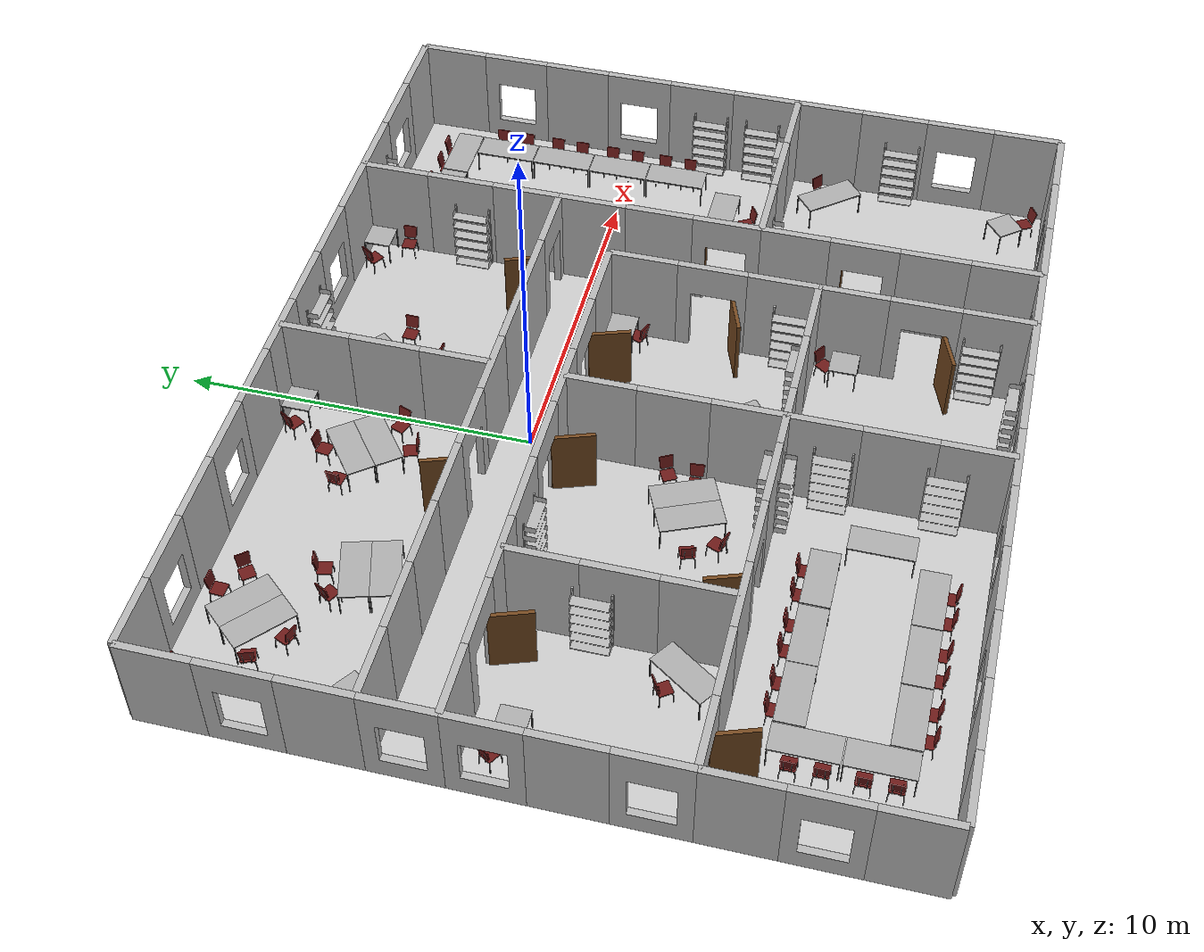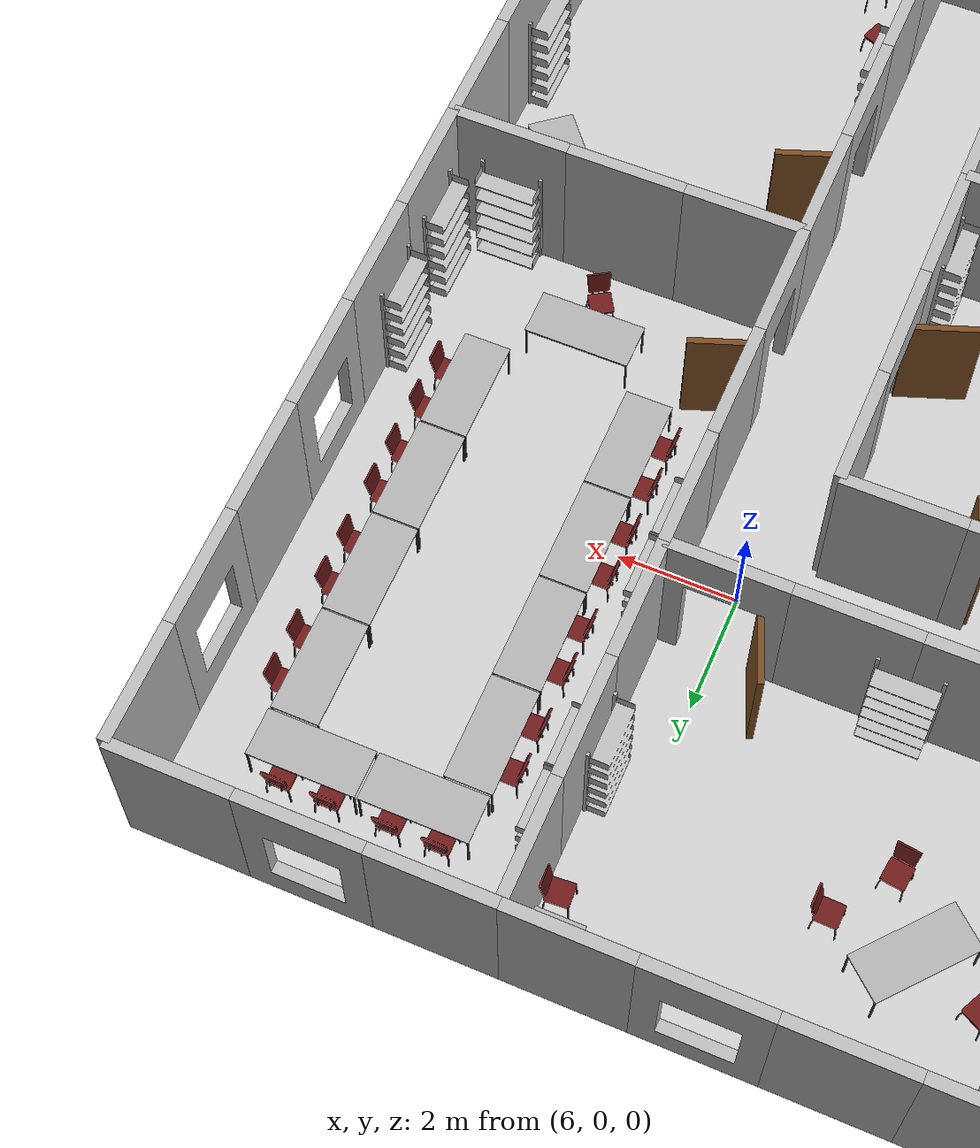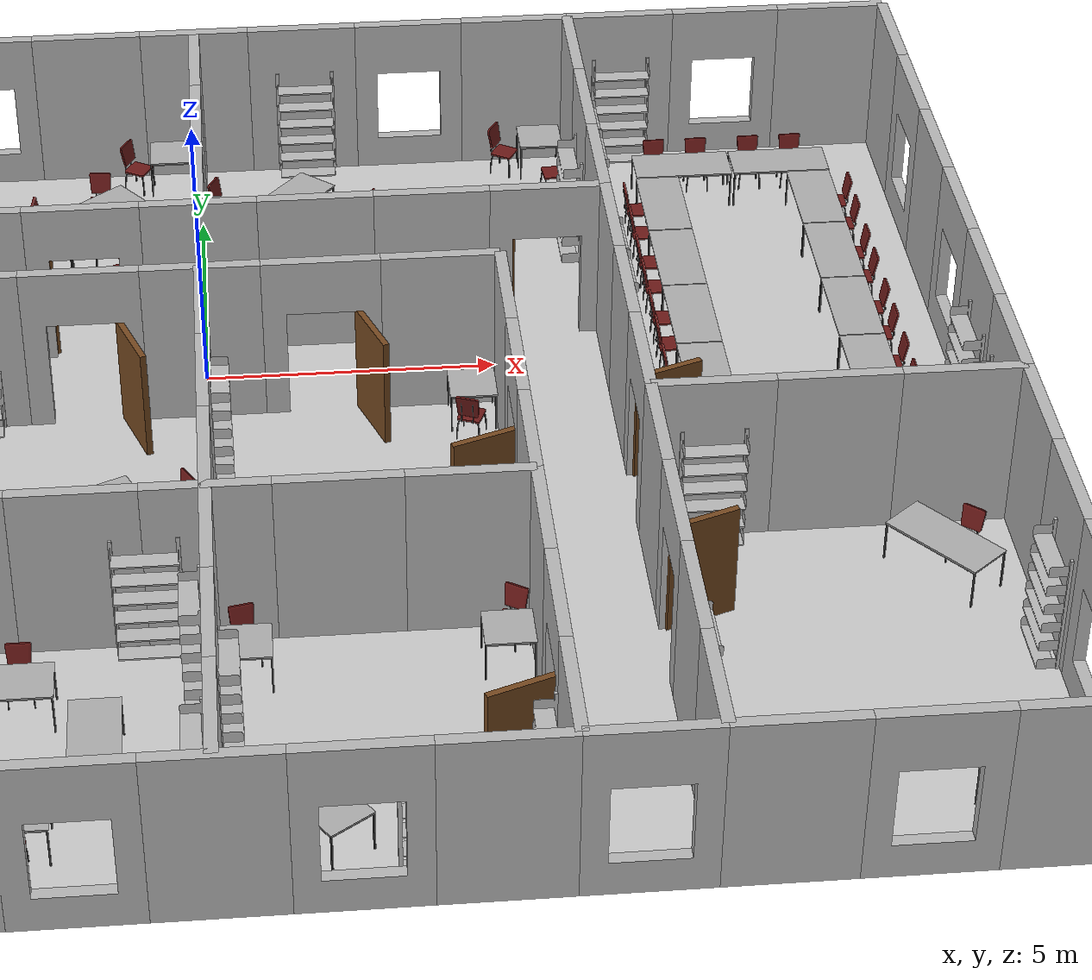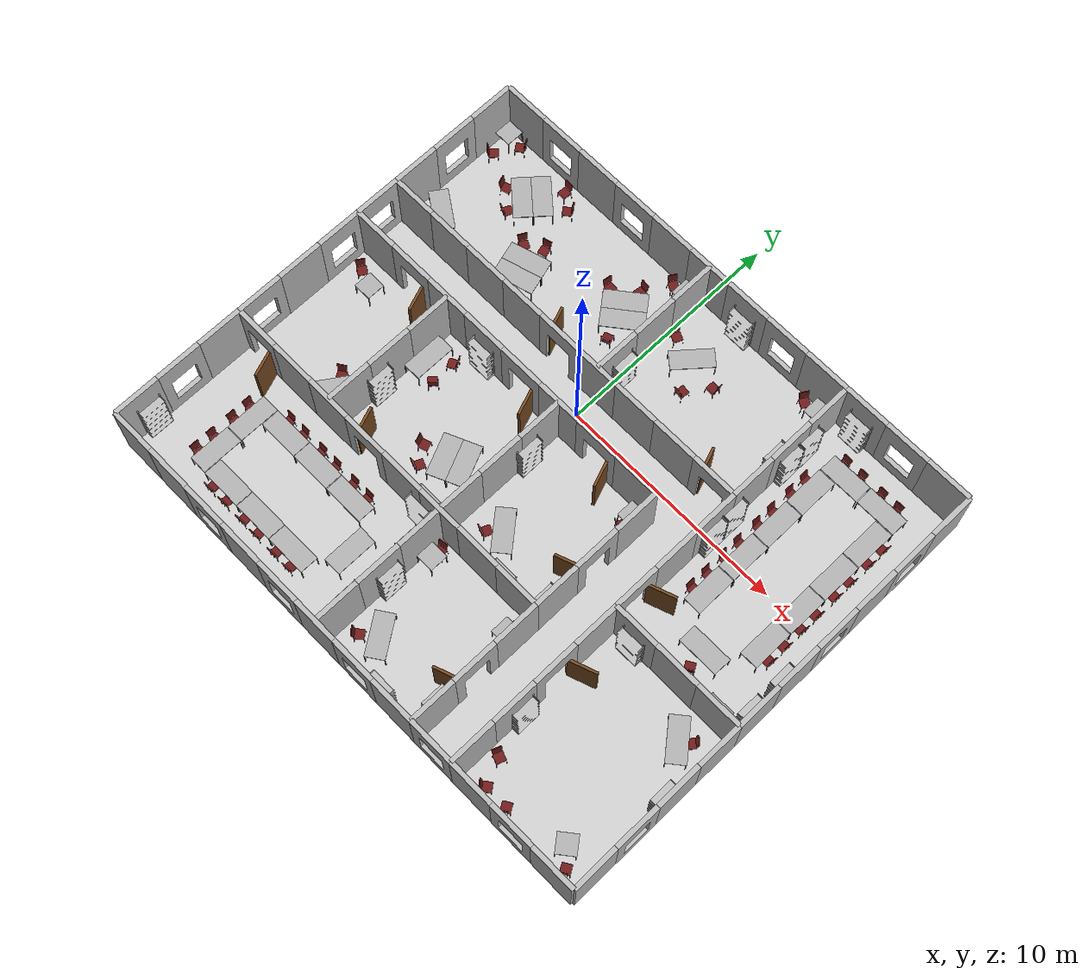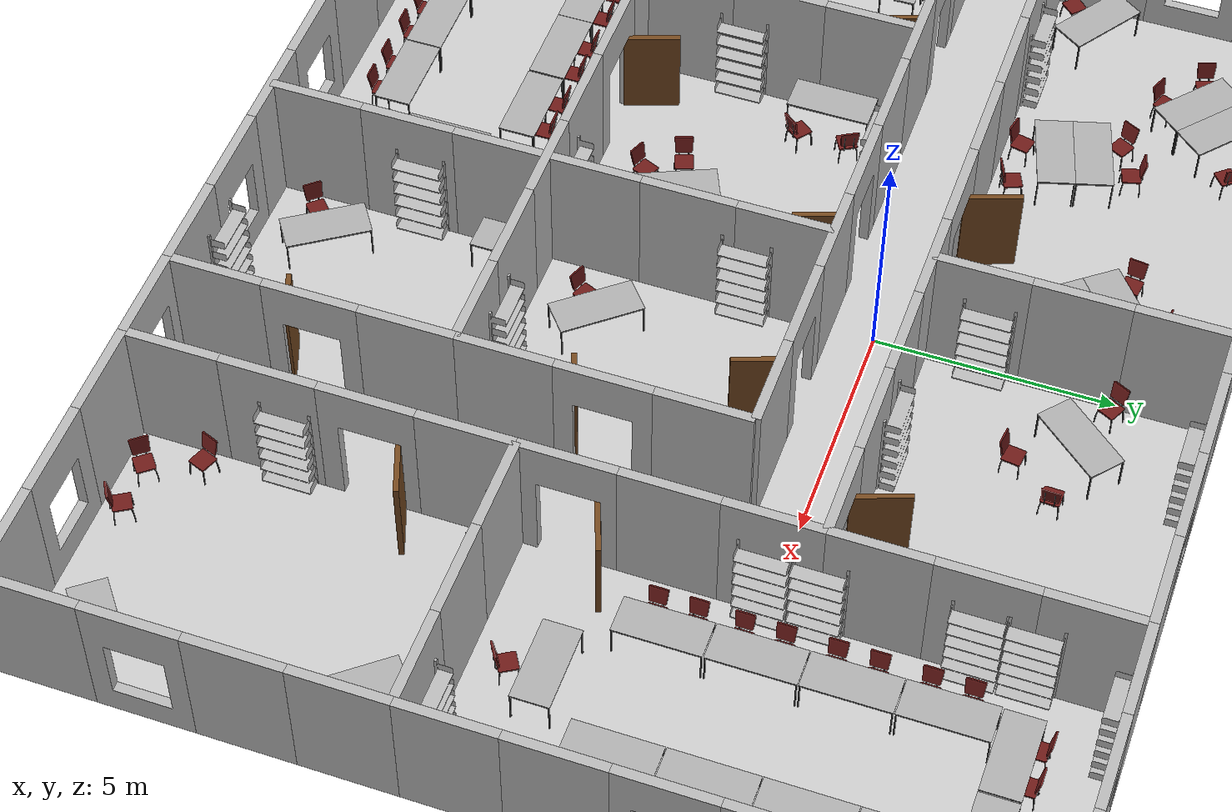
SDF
<?xml version="1.0" ?>
<sdf version="1.5">
  <world name="office_sim">
    <scene>
      <sky>
        <clouds>
          <speed>12</speed>
        </clouds>
      </sky>
    </scene>

    <include>
      <uri>model://sun</uri>
    </include>
    <model name='office_floor'>
      <pose>1 -3 0 0 0 0</pose>
      <static>1</static>
      <link name='link'>
        <collision name='collision'>
          <geometry>
            <plane>
              <normal>0 0 1</normal>
              <size>100 100</size>
            </plane>
          </geometry>
          <surface>
            <friction>
              <ode>
                <mu>100</mu>
                <mu2>50</mu2>
              </ode>
            </friction>
            <contact>
              <ode/>
            </contact>
            <bounce/>
          </surface>
          <max_contacts>10</max_contacts>
        </collision>
        <visual name='visual'>
          <cast_shadows>0</cast_shadows>
          <geometry>
            <plane>
              <normal>0 0 1</normal>
              <size>24 20</size>
            </plane>
          </geometry>
          <material>
	  <script>
            <uri>file://Media/materials/scripts/iai-office.material</uri>
             <name>IAI/OfficeCarpet</name>
          </script>
          </material>
        </visual>
        <self_collide>0</self_collide>
        <kinematic>0</kinematic>
        <gravity>1</gravity>
      </link>
    </model>
    <light name='fill_light_2' type='directional'>
      <pose>10 20 10 -1 -1 0</pose>
      <diffuse>0.2 0.18 0.18 1</diffuse>
      <specular>0.0980392 0.0980392 0.0980392 1</specular>
      <direction>0.1 0.1 -0.9</direction>
      <attenuation>
        <range>20</range>
        <constant>0.5</constant>
        <linear>0.01</linear>
        <quadratic>0.001</quadratic>
      </attenuation>
      <cast_shadows>1</cast_shadows>
    </light>
    <light name='fill_light_0' type='directional'>
      <pose>-10 -20 10 1 1 0</pose>
      <diffuse>0.25 0.2 0.2 1</diffuse>
      <specular>0.0980392 0.0980392 0.0980392 1</specular>
      <direction>0.1 0.1 -0.9</direction>
      <attenuation>
        <range>20</range>
        <constant>0.5</constant>
        <linear>0.01</linear>
        <quadratic>0.001</quadratic>
      </attenuation>
      <cast_shadows>1</cast_shadows>
    </light>
    <include>
      <name>Shelves.031</name>
      <uri>model://Shelves</uri>
      <pose>-3.9684362411499023 -1.1350655555725098 0.0 0.0 0.0 4.1326416067022365e-07</pose>
    </include>

    <include>
      <name>Shelves.030</name>
      <uri>model://Shelves</uri>
      <pose>-0.9684362411499023 -7.13506555557251 0.0 0.0 0.0 4.1326416067022365e-07</pose>
    </include>

    <include>
      <name>Shelves.029</name>
      <uri>model://Shelves</uri>
      <pose>8.031563758850098 -5.13506555557251 0.0 0.0 0.0 4.1326416067022365e-07</pose>
    </include>

    <include>
      <name>Shelves.028</name>
      <uri>model://Shelves</uri>
      <pose>8.031563758850098 6.86493444442749 0.0 0.0 0.0 4.1326416067022365e-07</pose>
    </include>

    <include>
      <name>Shelves.027</name>
      <uri>model://Shelves</uri>
      <pose>2.0315637588500977 6.86493444442749 0.0 0.0 0.0 4.1326416067022365e-07</pose>
    </include>

    <include>
      <name>Shelves.026</name>
      <uri>model://Shelves</uri>
      <pose>3.0315637588500977 1.1442127227783203 0.0 0.0 -0.0 3.1415929794311523</pose>
    </include>

    <include>
      <name>Shelves.025</name>
      <uri>model://Shelves</uri>
      <pose>-7.968436241149902 1.1442127227783203 0.0 0.0 -0.0 3.1415929794311523</pose>
    </include>

    <include>
      <name>Shelves.024</name>
      <uri>model://Shelves</uri>
      <pose>-0.9684362411499023 -6.85578727722168 0.0 0.0 -0.0 3.1415929794311523</pose>
    </include>

    <include>
      <name>Shelves.023</name>
      <uri>model://Shelves</uri>
      <pose>11.93159294128418 -4.842299938201904 0.0 0.0 -0.0 3.1415929794311523</pose>
    </include>

    <include>
      <name>Shelves.021</name>
      <uri>model://Shelves</uri>
      <pose>3.0315637588500977 -6.85578727722168 0.0 0.0 -0.0 3.1415929794311523</pose>
    </include>

    <include>
      <name>Shelves.020</name>
      <uri>model://Shelves</uri>
      <pose>3.0315637588500977 -12.85578727722168 0.0 0.0 -0.0 3.1415929794311523</pose>
    </include>

    <include>
      <name>Shelves.019</name>
      <uri>model://Shelves</uri>
      <pose>4.831563949584961 -11.677356719970703 0.0 0.0 -0.0 4.71238899230957</pose>
    </include>

    <include>
      <name>Shelves.018</name>
      <uri>model://Shelves</uri>
      <pose>-0.16843605041503906 -8.341840744018555 0.0 0.0 -0.0 4.71238899230957</pose>
    </include>

    <include>
      <name>Shelves.017</name>
      <uri>model://Shelves</uri>
      <pose>-0.16843605041503906 -11.341840744018555 0.0 0.0 -0.0 4.71238899230957</pose>
    </include>

    <include>
      <name>Shelves.016</name>
      <uri>model://Shelves</uri>
      <pose>-6.168436050415039 -3.3418407440185547 0.0 0.0 -0.0 4.71238899230957</pose>
    </include>

    <include>
      <name>Shelves.015</name>
      <uri>model://Shelves</uri>
      <pose>6.831563949584961 3.6581592559814453 0.0 0.0 -0.0 4.71238899230957</pose>
    </include>

    <include>
      <name>Shelves.014</name>
      <uri>model://Shelves</uri>
      <pose>4.831563949584961 -6.341840744018555 0.0 0.0 -0.0 4.71238899230957</pose>
    </include>

    <include>
      <name>Shelves.013</name>
      <uri>model://Shelves</uri>
      <pose>12.831563949584961 -8.341840744018555 0.0 0.0 -0.0 4.71238899230957</pose>
    </include>

    <include>
      <name>Shelves.012</name>
      <uri>model://Shelves</uri>
      <pose>12.831563949584961 -2.3418402671813965 0.0 0.0 -0.0 4.71238899230957</pose>
    </include>

    <include>
      <name>Shelves.011</name>
      <uri>model://Shelves</uri>
      <pose>12.831563949584961 -3.970358371734619 0.0 0.0 -0.0 4.71238899230957</pose>
    </include>

    <include>
      <name>Shelves.010</name>
      <uri>model://Shelves</uri>
      <pose>-5.8966450691223145 -4.741840362548828 0.0 0.0 -0.0 1.570796251296997</pose>
    </include>

    <include>
      <name>Shelves.009</name>
      <uri>model://Shelves</uri>
      <pose>7.1033549308776855 -9.70030403137207 0.0 0.0 -0.0 1.570796251296997</pose>
    </include>

    <include>
      <name>Shelves.008</name>
      <uri>model://Shelves</uri>
      <pose>-10.896644592285156 -11.741840362548828 0.0 0.0 -0.0 1.570796251296997</pose>
    </include>

    <include>
      <name>Shelves.007</name>
      <uri>model://Shelves</uri>
      <pose>0.10335493087768555 -9.741840362548828 0.0 0.0 -0.0 1.570796251296997</pose>
    </include>

    <include>
      <name>Shelves.006</name>
      <uri>model://Shelves</uri>
      <pose>0.10335493087768555 -2.741840362548828 0.0 0.0 -0.0 1.570796251296997</pose>
    </include>

    <include>
      <name>Shelves.005</name>
      <uri>model://Shelves</uri>
      <pose>0.10335493087768555 2.258159637451172 0.0 0.0 -0.0 1.570796251296997</pose>
    </include>

    <include>
      <name>Shelves.004</name>
      <uri>model://Shelves</uri>
      <pose>7.1033549308776855 5.028604507446289 0.0 0.0 -0.0 1.570796251296997</pose>
    </include>

    <include>
      <name>Shelves.003</name>
      <uri>model://Shelves</uri>
      <pose>7.1033549308776855 3.964681625366211 0.0 0.0 -0.0 1.570796251296997</pose>
    </include>

    <include>
      <name>Shelves.002</name>
      <uri>model://Shelves</uri>
      <pose>7.1033549308776855 0.9646815657615662 0.0 0.0 -0.0 1.570796251296997</pose>
    </include>

    <include>
      <name>Shelves.001</name>
      <uri>model://Shelves</uri>
      <pose>7.1033549308776855 -0.11143025010824203 0.0 0.0 -0.0 1.570796251296997</pose>
    </include>

    <include>
      <name>DoorOpen.011</name>
      <uri>model://DoorOpen</uri>
      <pose>-2.0 1.0 0.0 0.0 -0.0 -2.384185791015625e-07</pose>
    </include>

    <include>
      <name>DoorOpen.010</name>
      <uri>model://DoorOpen</uri>
      <pose>6.0 1.0 0.0 0.0 -0.0 -2.384185791015625e-07</pose>
    </include>

    <include>
      <name>DoorOpen.009</name>
      <uri>model://DoorOpen</uri>
      <pose>-2.0 -1.0 0.0 0.0 -0.0 3.141592502593994</pose>
    </include>

    <include>
      <name>DoorOpen.008</name>
      <uri>model://DoorOpen</uri>
      <pose>-10.0 -7.0 0.0 0.0 -0.0 3.141592502593994</pose>
    </include>

    <include>
      <name>DoorOpen.007</name>
      <uri>model://DoorOpen</uri>
      <pose>-8.0 -1.0 0.0 0.0 -0.0 3.141592502593994</pose>
    </include>

    <include>
      <name>DoorOpen.006</name>
      <uri>model://DoorOpen</uri>
      <pose>2.0 -1.0 0.0 0.0 -0.0 3.141592502593994</pose>
    </include>

    <include>
      <name>DoorOpen.005</name>
      <uri>model://DoorOpen</uri>
      <pose>5.0 -10.0 0.0 0.0 -0.0 1.570796251296997</pose>
    </include>

    <include>
      <name>DoorOpen.004</name>
      <uri>model://DoorOpen</uri>
      <pose>5.0 -4.0 0.0 0.0 -0.0 1.570796251296997</pose>
    </include>

    <include>
      <name>DoorOpen.003</name>
      <uri>model://DoorOpen</uri>
      <pose>7.0 -4.0 0.0 0.0 -0.0 -1.5707963705062866</pose>
    </include>

    <include>
      <name>DoorOpen.002</name>
      <uri>model://DoorOpen</uri>
      <pose>7.0 -8.0 0.0 0.0 -0.0 -1.5707963705062866</pose>
    </include>

    <include>
      <name>DoorOpen.001</name>
      <uri>model://DoorOpen</uri>
      <pose>-4.0 -7.0 0.0 0.0 -0.0 0.0</pose>
    </include>

    <include>
      <name>chair.077</name>
      <uri>model://Chair</uri>
      <pose>-1.1767916679382324 6.461211204528809 0.0 0.0 -0.0 1.0580670833587646</pose>
    </include>

    <include>
      <name>chair.076</name>
      <uri>model://Chair</uri>
      <pose>-9.856108665466309 6.461211204528809 0.0 0.0 -0.0 -0.9490617513656616</pose>
    </include>

    <include>
      <name>chair.075</name>
      <uri>model://Chair</uri>
      <pose>-10.422019958496094 5.518025875091553 0.0 0.0 -0.0 2.39536190032959</pose>
    </include>

    <include>
      <name>chair.074</name>
      <uri>model://Chair</uri>
      <pose>-10.422019958496094 1.5180258750915527 0.0 0.0 -0.0 2.39536190032959</pose>
    </include>

    <include>
      <name>chair.073</name>
      <uri>model://Chair</uri>
      <pose>-8.894061088562012 4.800981521606445 0.0 0.0 -0.0 1.919332504272461</pose>
    </include>

    <include>
      <name>chair.072</name>
      <uri>model://Chair</uri>
      <pose>-8.120648384094238 4.103024482727051 0.0 0.0 -0.0 2.7526354789733887</pose>
    </include>

    <include>
      <name>chair.071</name>
      <uri>model://Chair</uri>
      <pose>-7.112948894500732 6.28751277923584 0.0 0.0 -0.0 -0.03989126533269882</pose>
    </include>

    <include>
      <name>chair.070</name>
      <uri>model://Chair</uri>
      <pose>-6.4488067626953125 5.786490440368652 0.0 0.0 -0.0 -0.8731942176818848</pose>
    </include>

    <include>
      <name>chair.069</name>
      <uri>model://Chair</uri>
      <pose>-4.859220027923584 1.5611318349838257 0.0 0.0 -0.0 -2.730329990386963</pose>
    </include>

    <include>
      <name>chair.068</name>
      <uri>model://Chair</uri>
      <pose>-5.957728862762451 1.5050313472747803 0.0 0.0 -0.0 2.923724412918091</pose>
    </include>

    <include>
      <name>chair.067</name>
      <uri>model://Chair</uri>
      <pose>-5.816341876983643 3.8929905891418457 0.0 0.0 -0.0 0.2612699568271637</pose>
    </include>

    <include>
      <name>chair.066</name>
      <uri>model://Chair</uri>
      <pose>-6.551100730895996 3.502814769744873 0.0 0.0 -0.0 1.094572901725769</pose>
    </include>

    <include>
      <name>chair.065</name>
      <uri>model://Chair</uri>
      <pose>-2.828597068786621 4.6129560470581055 0.0 0.0 -0.0 1.443638563156128</pose>
    </include>

    <include>
      <name>chair.064</name>
      <uri>model://Chair</uri>
      <pose>-1.8943233489990234 5.306358337402344 0.0 0.0 -0.0 -0.1208677738904953</pose>
    </include>

    <include>
      <name>chair.063</name>
      <uri>model://Chair</uri>
      <pose>-1.3927404880523682 3.009568214416504 0.0 0.0 -0.0 -2.793056011199951</pose>
    </include>

    <include>
      <name>chair.062</name>
      <uri>model://Chair</uri>
      <pose>-0.5971378087997437 3.550607442855835 0.0 0.0 -0.0 -1.9489178657531738</pose>
    </include>

    <include>
      <name>chair.061</name>
      <uri>model://Chair</uri>
      <pose>5.789566993713379 6.49669075012207 0.0 0.0 -0.0 1.0295674800872803</pose>
    </include>

    <include>
      <name>chair.060</name>
      <uri>model://Chair</uri>
      <pose>6.638433933258057 5.663543701171875 0.0 0.0 -0.0 -1.4921659231185913</pose>
    </include>

    <include>
      <name>chair.059</name>
      <uri>model://Chair</uri>
      <pose>2.205463409423828 3.462778091430664 0.0 0.0 -0.0 3.0117697715759277</pose>
    </include>

    <include>
      <name>chair.058</name>
      <uri>model://Chair</uri>
      <pose>2.9259519577026367 4.412513256072998 0.0 0.0 -0.0 -1.5958665609359741</pose>
    </include>

    <include>
      <name>chair.057</name>
      <uri>model://Chair</uri>
      <pose>0.44790756702423096 4.969254493713379 0.0 0.0 -0.0 1.109393835067749</pose>
    </include>

    <include>
      <name>chair.056</name>
      <uri>model://Chair</uri>
      <pose>-10.168054580688477 -1.8467810153961182 0.0 0.0 -0.0 1.0344487428665161</pose>
    </include>

    <include>
      <name>chair.055</name>
      <uri>model://Chair</uri>
      <pose>-7.35992431640625 -5.457332611083984 0.0 0.0 -0.0 0.5981165766716003</pose>
    </include>

    <include>
      <name>chair.054</name>
      <uri>model://Chair</uri>
      <pose>-4.7586989402771 -3.0871129035949707 0.0 0.0 -0.0 -2.2289175987243652</pose>
    </include>

    <include>
      <name>chair.053</name>
      <uri>model://Chair</uri>
      <pose>-4.7586989402771 -2.030745506286621 0.0 0.0 -0.0 -1.072267770767212</pose>
    </include>

    <include>
      <name>chair.051</name>
      <uri>model://Chair</uri>
      <pose>-0.552092432975769 -4.030745506286621 0.0 0.0 -0.0 -1.072267770767212</pose>
    </include>

    <include>
      <name>chair.050</name>
      <uri>model://Chair</uri>
      <pose>-0.6727085113525391 -4.822094917297363 0.0 0.0 -0.0 -1.48405921459198</pose>
    </include>

    <include>
      <name>chair.049</name>
      <uri>model://Chair</uri>
      <pose>-3.045818328857422 -5.096081733703613 0.0 0.0 -0.0 1.919332504272461</pose>
    </include>

    <include>
      <name>chair.048</name>
      <uri>model://Chair</uri>
      <pose>1.0853331089019775 -5.794038772583008 0.0 0.0 -0.0 2.7526354789733887</pose>
    </include>

    <include>
      <name>chair.047</name>
      <uri>model://Chair</uri>
      <pose>7.5999627113342285 -11.34547233581543 0.0 0.0 -0.0 1.206688642501831</pose>
    </include>

    <include>
      <name>chair.046</name>
      <uri>model://Chair</uri>
      <pose>8.052691459655762 -12.386749267578125 0.0 0.0 0.0 2.24947190284729</pose>
    </include>

    <include>
      <name>chair.045</name>
      <uri>model://Chair</uri>
      <pose>9.052691459655762 -12.386749267578125 0.0 0.0 0.0 -2.594113349914551</pose>
    </include>

    <include>
      <name>chair.044</name>
      <uri>model://Chair</uri>
      <pose>4.434733867645264 -2.0032715797424316 0.0 0.0 -0.0 2.7526354789733887</pose>
    </include>

    <include>
      <name>chair.043</name>
      <uri>model://Chair</uri>
      <pose>-2.5930893421173096 -5.794038772583008 0.0 0.0 -0.0 2.7526354789733887</pose>
    </include>

    <include>
      <name>chair.042</name>
      <uri>model://Chair</uri>
      <pose>4.560027599334717 -7.4520039558410645 0.0 0.0 -0.0 -0.563490092754364</pose>
    </include>

    <include>
      <name>chair.041</name>
      <uri>model://Chair</uri>
      <pose>0.4854675233364105 -7.587822914123535 0.0 0.0 -0.0 0.2043076455593109</pose>
    </include>

    <include>
      <name>chair.040</name>
      <uri>model://Chair</uri>
      <pose>0.7571048736572266 -11.866110801696777 0.0 0.0 0.0 2.2928085327148438</pose>
    </include>

    <include>
      <name>chair.039</name>
      <uri>model://Chair</uri>
      <pose>12.052691459655762 -12.386749267578125 0.0 0.0 0.0 -2.594113349914551</pose>
    </include>

    <include>
      <name>chair.038</name>
      <uri>model://Chair</uri>
      <pose>11.992774963378906 -6.101810455322266 0.0 0.0 0.0 -0.6981316208839417</pose>
    </include>

    <include>
      <name>chair.037</name>
      <uri>model://Chair</uri>
      <pose>9.992774963378906 -4.101810455322266 0.0 0.0 0.0 -2.594113349914551</pose>
    </include>

    <include>
      <name>chair.036</name>
      <uri>model://Chair</uri>
      <pose>8.061246871948242 -1.1018102169036865 0.0 0.0 0.0 1.5707963705062866</pose>
    </include>

    <include>
      <name>chair.035</name>
      <uri>model://Chair</uri>
      <pose>8.061246871948242 -1.9018104076385498 0.0 0.0 0.0 1.5707963705062866</pose>
    </include>

    <include>
      <name>chair.034</name>
      <uri>model://Chair</uri>
      <pose>11.761246681213379 -1.1018099784851074 0.0 0.0 -0.0 -1.570796251296997</pose>
    </include>

    <include>
      <name>chair.033</name>
      <uri>model://Chair</uri>
      <pose>11.761246681213379 -1.9018101692199707 0.0 0.0 -0.0 -1.570796251296997</pose>
    </include>

    <include>
      <name>chair.032</name>
      <uri>model://Chair</uri>
      <pose>11.761246681213379 -0.20181012153625488 0.0 0.0 -0.0 -1.570796251296997</pose>
    </include>

    <include>
      <name>chair.031</name>
      <uri>model://Chair</uri>
      <pose>11.761246681213379 0.5981900691986084 0.0 0.0 -0.0 -1.570796251296997</pose>
    </include>

    <include>
      <name>chair.030</name>
      <uri>model://Chair</uri>
      <pose>11.761246681213379 2.3981902599334717 0.0 0.0 -0.0 -1.570796251296997</pose>
    </include>

    <include>
      <name>chair.029</name>
      <uri>model://Chair</uri>
      <pose>11.761246681213379 1.5981900691986084 0.0 0.0 -0.0 -1.570796251296997</pose>
    </include>

    <include>
      <name>chair.028</name>
      <uri>model://Chair</uri>
      <pose>11.761246681213379 3.3981902599334717 0.0 0.0 -0.0 -1.570796251296997</pose>
    </include>

    <include>
      <name>chair.027</name>
      <uri>model://Chair</uri>
      <pose>11.761246681213379 4.198190689086914 0.0 0.0 -0.0 -1.570796251296997</pose>
    </include>

    <include>
      <name>chair.026</name>
      <uri>model://Chair</uri>
      <pose>8.061246871948242 -0.20181035995483398 0.0 0.0 0.0 1.5707963705062866</pose>
    </include>

    <include>
      <name>chair.025</name>
      <uri>model://Chair</uri>
      <pose>8.061246871948242 0.5981898307800293 0.0 0.0 0.0 1.5707963705062866</pose>
    </include>

    <include>
      <name>chair.024</name>
      <uri>model://Chair</uri>
      <pose>8.061246871948242 2.3981902599334717 0.0 0.0 0.0 1.5707963705062866</pose>
    </include>

    <include>
      <name>chair.023</name>
      <uri>model://Chair</uri>
      <pose>8.061246871948242 1.5981900691986084 0.0 0.0 0.0 1.5707963705062866</pose>
    </include>

    <include>
      <name>chair.022</name>
      <uri>model://Chair</uri>
      <pose>8.061246871948242 3.3981902599334717 0.0 0.0 0.0 1.5707963705062866</pose>
    </include>

    <include>
      <name>chair.021</name>
      <uri>model://Chair</uri>
      <pose>8.061246871948242 4.198190689086914 0.0 0.0 0.0 1.5707963705062866</pose>
    </include>

    <include>
      <name>chair.020</name>
      <uri>model://Chair</uri>
      <pose>11.161247253417969 5.5981903076171875 0.0 0.0 -0.0 -1.7484555314695172e-07</pose>
    </include>

    <include>
      <name>chair.019</name>
      <uri>model://Chair</uri>
      <pose>10.361247062683105 5.5981903076171875 0.0 0.0 -0.0 -1.7484555314695172e-07</pose>
    </include>

    <include>
      <name>chair.018</name>
      <uri>model://Chair</uri>
      <pose>8.561246871948242 5.5981903076171875 0.0 0.0 -0.0 -1.7484555314695172e-07</pose>
    </include>

    <include>
      <name>chair.017</name>
      <uri>model://Chair</uri>
      <pose>9.361247062683105 5.5981903076171875 0.0 0.0 -0.0 -1.7484555314695172e-07</pose>
    </include>

    <include>
      <name>chair.016</name>
      <uri>model://Chair</uri>
      <pose>-8.724837303161621 -10.608839988708496 0.0 0.0 0.0 1.5707963705062866</pose>
    </include>

    <include>
      <name>chair.015</name>
      <uri>model://Chair</uri>
      <pose>-8.724837303161621 -11.40884017944336 0.0 0.0 0.0 1.5707963705062866</pose>
    </include>

    <include>
      <name>chair.014</name>
      <uri>model://Chair</uri>
      <pose>-8.724837303161621 -9.608839988708496 0.0 0.0 0.0 1.5707963705062866</pose>
    </include>

    <include>
      <name>chair.013</name>
      <uri>model://Chair</uri>
      <pose>-8.724837303161621 -8.808839797973633 0.0 0.0 0.0 1.5707963705062866</pose>
    </include>

    <include>
      <name>chair.012</name>
      <uri>model://Chair</uri>
      <pose>-7.324837684631348 -11.90884017944336 0.0 0.0 -0.0 -3.141592502593994</pose>
    </include>

    <include>
      <name>chair.011</name>
      <uri>model://Chair</uri>
      <pose>-6.524837493896484 -11.90884017944336 0.0 0.0 -0.0 -3.141592502593994</pose>
    </include>

    <include>
      <name>chair.010</name>
      <uri>model://Chair</uri>
      <pose>-4.724837303161621 -11.90884017944336 0.0 0.0 -0.0 -3.141592502593994</pose>
    </include>

    <include>
      <name>chair.009</name>
      <uri>model://Chair</uri>
      <pose>-5.524837493896484 -11.90884017944336 0.0 0.0 -0.0 -3.141592502593994</pose>
    </include>

    <include>
      <name>chair.008</name>
      <uri>model://Chair</uri>
      <pose>-3.724837303161621 -11.90884017944336 0.0 0.0 -0.0 -3.141592502593994</pose>
    </include>

    <include>
      <name>chair.007</name>
      <uri>model://Chair</uri>
      <pose>-2.924837112426758 -11.90884017944336 0.0 0.0 -0.0 -3.141592502593994</pose>
    </include>

    <include>
      <name>chair.006</name>
      <uri>model://Chair</uri>
      <pose>-7.324837684631348 -8.208840370178223 0.0 0.0 -0.0 0.0</pose>
    </include>

    <include>
      <name>chair.005</name>
      <uri>model://Chair</uri>
      <pose>-6.524837493896484 -8.208840370178223 0.0 0.0 -0.0 0.0</pose>
    </include>

    <include>
      <name>chair.004</name>
      <uri>model://Chair</uri>
      <pose>-4.724837303161621 -8.208840370178223 0.0 0.0 -0.0 0.0</pose>
    </include>

    <include>
      <name>chair.003</name>
      <uri>model://Chair</uri>
      <pose>-5.524837493896484 -8.208840370178223 0.0 0.0 -0.0 0.0</pose>
    </include>

    <include>
      <name>chair.002</name>
      <uri>model://Chair</uri>
      <pose>-3.724837303161621 -8.208840370178223 0.0 0.0 -0.0 0.0</pose>
    </include>

    <include>
      <name>chair.001</name>
      <uri>model://Chair</uri>
      <pose>-2.924837350845337 -8.208840370178223 0.0 0.0 -0.0 0.0</pose>
    </include>

    <include>
      <name>SmallTable.009</name>
      <uri>model://SmallTable</uri>
      <pose>11.49277114868164 -11.799837112426758 0.0 0.0 -0.0 0.6710938811302185</pose>
    </include>

    <include>
      <name>SmallTable.008</name>
      <uri>model://SmallTable</uri>
      <pose>0.49277162551879883 -7.997496604919434 0.0 0.0 -0.0 0.0</pose>
    </include>

    <include>
      <name>SmallTable.007</name>
      <uri>model://SmallTable</uri>
      <pose>4.492771625518799 -7.997496604919434 0.0 0.0 -0.0 0.0</pose>
    </include>

    <include>
      <name>SmallTable.005</name>
      <uri>model://SmallTable</uri>
      <pose>-9.351788520812988 -2.1724982261657715 0.0 0.0 -0.0 0.0</pose>
    </include>

    <include>
      <name>SmallTable.004</name>
      <uri>model://SmallTable</uri>
      <pose>-10.550202369689941 6.496032238006592 0.0 0.0 -0.0 0.0</pose>
    </include>

    <include>
      <name>SmallTable.003</name>
      <uri>model://SmallTable</uri>
      <pose>-0.5502023696899414 6.496032238006592 0.0 0.0 -0.0 0.0</pose>
    </include>

    <include>
      <name>BigTable.035</name>
      <uri>model://BigTable</uri>
      <pose>9.970643997192383 -3.337587833404541 0.0 0.0 -0.0 -3.141592502593994</pose>
    </include>

    <include>
      <name>BigTable.034</name>
      <uri>model://BigTable</uri>
      <pose>-1.7653074264526367 -10.015997886657715 0.0 0.0 0.0 -1.570796251296997</pose>
    </include>

    <include>
      <name>SmallTable.002</name>
      <uri>model://SmallTable</uri>
      <pose>6.449797630310059 6.496032238006592 0.0 0.0 -0.0 0.0</pose>
    </include>

    <include>
      <name>SmallTable.001</name>
      <uri>model://SmallTable</uri>
      <pose>4.484805583953857 -1.5257582664489746 0.0 0.0 -0.0 0.0</pose>
    </include>

    <include>
      <name>BigTable.033</name>
      <uri>model://BigTable</uri>
      <pose>1.3909807205200195 -11.392568588256836 0.0 0.0 -0.0 -0.9696148037910461</pose>
    </include>

    <include>
      <name>BigTable.032</name>
      <uri>model://BigTable</uri>
      <pose>11.59203815460205 -6.392568588256836 0.0 0.0 0.0 2.259244441986084</pose>
    </include>

    <include>
      <name>BigTable.031</name>
      <uri>model://BigTable</uri>
      <pose>1.5920383930206299 4.607431411743164 0.0 0.0 -0.0 -2.278611898422241</pose>
    </include>

    <include>
      <name>BigTable.030</name>
      <uri>model://BigTable</uri>
      <pose>-5.888200283050537 3.0161097049713135 0.0 0.0 -0.0 0.28127923607826233</pose>
    </include>

    <include>
      <name>BigTable.029</name>
      <uri>model://BigTable</uri>
      <pose>-5.666131496429443 2.247548818588257 0.0 0.0 -0.0 0.28127923607826233</pose>
    </include>

    <include>
      <name>BigTable.028</name>
      <uri>model://BigTable</uri>
      <pose>-8.040440559387207 4.811714172363281 0.0 0.0 0.0 -0.7120052576065063</pose>
    </include>

    <include>
      <name>BigTable.027</name>
      <uri>model://BigTable</uri>
      <pose>-7.517758369445801 5.417357444763184 0.0 0.0 0.0 -0.7120052576065063</pose>
    </include>

    <include>
      <name>BigTable.026</name>
      <uri>model://BigTable</uri>
      <pose>-1.4606881141662598 3.8930177688598633 0.0 0.0 -0.0 -2.475163459777832</pose>
    </include>

    <include>
      <name>BigTable.025</name>
      <uri>model://BigTable</uri>
      <pose>-1.9552350044250488 4.521844863891602 0.0 0.0 -0.0 -2.475163459777832</pose>
    </include>

    <include>
      <name>BigTable.024</name>
      <uri>model://BigTable</uri>
      <pose>-9.847131729125977 2.143615245819092 0.0 0.0 -0.0 -0.5935592651367188</pose>
    </include>

    <include>
      <name>BigTable.023</name>
      <uri>model://BigTable</uri>
      <pose>-6.975014686584473 -5.92275333404541 0.0 0.0 -0.0 0.9772372841835022</pose>
    </include>

    <include>
      <name>BigTable.022</name>
      <uri>model://BigTable</uri>
      <pose>-5.118752956390381 -8.626441955566406 0.0 0.0 -0.0 0.0</pose>
    </include>

    <include>
      <name>BigTable.021</name>
      <uri>model://BigTable</uri>
      <pose>-3.282266616821289 -8.626441955566406 0.0 0.0 -0.0 0.0</pose>
    </include>

    <include>
      <name>BigTable.020</name>
      <uri>model://BigTable</uri>
      <pose>-6.928031921386719 -8.626441955566406 0.0 0.0 -0.0 0.0</pose>
    </include>

    <include>
      <name>BigTable.019</name>
      <uri>model://BigTable</uri>
      <pose>-5.103433609008789 -11.471855163574219 0.0 0.0 -0.0 0.0</pose>
    </include>

    <include>
      <name>BigTable.018</name>
      <uri>model://BigTable</uri>
      <pose>-6.928031921386719 -11.471855163574219 0.0 0.0 -0.0 0.0</pose>
    </include>

    <include>
      <name>BigTable.017</name>
      <uri>model://BigTable</uri>
      <pose>-3.282266616821289 -11.471855163574219 0.0 0.0 -0.0 0.0</pose>
    </include>

    <include>
      <name>BigTable.016</name>
      <uri>model://BigTable</uri>
      <pose>-8.26133918762207 -10.950126647949219 0.0 0.0 0.0 -1.570796251296997</pose>
    </include>

    <include>
      <name>BigTable.015</name>
      <uri>model://BigTable</uri>
      <pose>-8.26133918762207 -9.114413261413574 0.0 0.0 0.0 -1.570796251296997</pose>
    </include>

    <include>
      <name>BigTable.014</name>
      <uri>model://BigTable</uri>
      <pose>10.849480628967285 5.211101531982422 0.0 0.0 -0.0 -3.141592502593994</pose>
    </include>

    <include>
      <name>BigTable.013</name>
      <uri>model://BigTable</uri>
      <pose>9.01376724243164 5.211101531982422 0.0 0.0 -0.0 -3.141592502593994</pose>
    </include>

    <include>
      <name>BigTable.012</name>
      <uri>model://BigTable</uri>
      <pose>8.49203872680664 -1.5925686359405518 0.0 0.0 -0.0 -1.570796251296997</pose>
    </include>

    <include>
      <name>BigTable.011</name>
      <uri>model://BigTable</uri>
      <pose>8.49203872680664 0.2320290505886078 0.0 0.0 -0.0 -1.570796251296997</pose>
    </include>

    <include>
      <name>BigTable.010</name>
      <uri>model://BigTable</uri>
      <pose>8.49203872680664 3.877794027328491 0.0 0.0 -0.0 -1.570796251296997</pose>
    </include>

    <include>
      <name>BigTable.009</name>
      <uri>model://BigTable</uri>
      <pose>8.49203872680664 2.053196430206299 0.0 0.0 -0.0 -1.570796251296997</pose>
    </include>

    <include>
      <name>BigTable.008</name>
      <uri>model://BigTable</uri>
      <pose>11.337451934814453 2.053196430206299 0.0 0.0 -0.0 -1.570796251296997</pose>
    </include>

    <include>
      <name>BigTable.007</name>
      <uri>model://BigTable</uri>
      <pose>11.337451934814453 3.877794027328491 0.0 0.0 -0.0 -1.570796251296997</pose>
    </include>

    <include>
      <name>BigTable.006</name>
      <uri>model://BigTable</uri>
      <pose>11.337451934814453 0.2320290505886078 0.0 0.0 -0.0 -1.570796251296997</pose>
    </include>

    <include>
      <name>BigTable.005</name>
      <uri>model://BigTable</uri>
      <pose>11.337451934814453 -1.5925686359405518 0.0 0.0 -0.0 -1.570796251296997</pose>
    </include>

    <include>
      <name>BigTable.004</name>
      <uri>model://BigTable</uri>
      <pose>-5.507961273193359 -2.5925686359405518 0.0 0.0 -0.0 -1.570796251296997</pose>
    </include>

    <include>
      <name>BigTable.003</name>
      <uri>model://BigTable</uri>
      <pose>-2.0734405517578125 -4.955126762390137 0.0 0.0 -0.0 -1.1522915363311768</pose>
    </include>

    <include>
      <name>BigTable.002</name>
      <uri>model://BigTable</uri>
      <pose>-1.3424824476242065 -4.630010604858398 0.0 0.0 -0.0 -1.1522915363311768</pose>
    </include>

    <include>
      <name>BigTable.001</name>
      <uri>model://BigTable</uri>
      <pose>1.5920383930206299 -5.392568588256836 0.0 0.0 -0.0 -0.8726645708084106</pose>
    </include>

    <include>
      <name>WindowTile.019</name>
      <uri>model://WindowTile</uri>
      <pose>-6.0 -13.0 0.0 0.0 -0.0 0.0</pose>
    </include>

    <include>
      <name>WindowTile.018</name>
      <uri>model://WindowTile</uri>
      <pose>-2.0 -13.0 0.0 0.0 -0.0 0.0</pose>
    </include>

    <include>
      <name>WindowTile.017</name>
      <uri>model://WindowTile</uri>
      <pose>2.0 -13.0 0.0 0.0 -0.0 0.0</pose>
    </include>

    <include>
      <name>WindowTile.016</name>
      <uri>model://WindowTile</uri>
      <pose>6.0 -13.0 0.0 0.0 -0.0 0.0</pose>
    </include>

    <include>
      <name>WindowTile.015</name>
      <uri>model://WindowTile</uri>
      <pose>-11.0 -10.0 0.0 0.0 -0.0 -1.570796251296997</pose>
    </include>

    <include>
      <name>WindowTile.014</name>
      <uri>model://WindowTile</uri>
      <pose>-11.0 -6.0 0.0 0.0 -0.0 -1.570796251296997</pose>
    </include>

    <include>
      <name>WindowTile.013</name>
      <uri>model://WindowTile</uri>
      <pose>-11.0 -2.0 0.0 0.0 -0.0 -1.570796251296997</pose>
    </include>

    <include>
      <name>WindowTile.012</name>
      <uri>model://WindowTile</uri>
      <pose>-11.0 0.0 0.0 0.0 -0.0 -1.570796251296997</pose>
    </include>

    <include>
      <name>WindowTile.003</name>
      <uri>model://WindowTile</uri>
      <pose>-11.0 4.0 0.0 0.0 -0.0 -1.570796251296997</pose>
    </include>

    <include>
      <name>WallTile.084</name>
      <uri>model://WallTile</uri>
      <pose>2.0 1.0 0.0 0.0 -0.0 3.141592502593994</pose>
    </include>

    <include>
      <name>DoorTile.011</name>
      <uri>model://DoorTile</uri>
      <pose>5.0 -4.0 0.0 0.0 -0.0 -1.570796251296997</pose>
    </include>

    <include>
      <name>DoorTile.010</name>
      <uri>model://DoorTile</uri>
      <pose>5.0 -10.0 0.0 0.0 -0.0 -1.570796251296997</pose>
    </include>

    <include>
      <name>WallTile.082</name>
      <uri>model://WallTile</uri>
      <pose>4.0 -7.0 0.0 0.0 -0.0 0.0</pose>
    </include>

    <include>
      <name>WallTile.081</name>
      <uri>model://WallTile</uri>
      <pose>2.0 -7.0 0.0 0.0 -0.0 3.141592502593994</pose>
    </include>

    <include>
      <name>WallTile.080</name>
      <uri>model://WallTile</uri>
      <pose>5.0 -6.0 0.0 0.0 -0.0 1.570796251296997</pose>
    </include>

    <include>
      <name>WallTile.078</name>
      <uri>model://WallTile</uri>
      <pose>5.0 -2.0 0.0 0.0 -0.0 1.570796251296997</pose>
    </include>

    <include>
      <name>WallTile.077</name>
      <uri>model://WallTile</uri>
      <pose>5.0 -8.0 0.0 0.0 -0.0 1.570796251296997</pose>
    </include>

    <include>
      <name>WallTile.075</name>
      <uri>model://WallTile</uri>
      <pose>5.0 -12.0 0.0 0.0 -0.0 1.570796251296997</pose>
    </include>

    <include>
      <name>WallTile.074</name>
      <uri>model://WallTile</uri>
      <pose>0.0 -12.0 0.0 0.0 -0.0 1.570796251296997</pose>
    </include>

    <include>
      <name>WallTile.073</name>
      <uri>model://WallTile</uri>
      <pose>0.0 -10.0 0.0 0.0 -0.0 1.570796251296997</pose>
    </include>

    <include>
      <name>WallTile.072</name>
      <uri>model://WallTile</uri>
      <pose>0.0 -8.0 0.0 0.0 -0.0 1.570796251296997</pose>
    </include>

    <include>
      <name>WallTile.071</name>
      <uri>model://WallTile</uri>
      <pose>-2.0 -7.0 0.0 0.0 -0.0 3.141592502593994</pose>
    </include>

    <include>
      <name>WallTile.070</name>
      <uri>model://WallTile</uri>
      <pose>-6.0 -7.0 0.0 0.0 -0.0 3.141592502593994</pose>
    </include>

    <include>
      <name>WallTile.069</name>
      <uri>model://WallTile</uri>
      <pose>-8.0 -7.0 0.0 0.0 -0.0 3.141592502593994</pose>
    </include>

    <include>
      <name>WallTile.068</name>
      <uri>model://WallTile</uri>
      <pose>0.0 -7.0 0.0 0.0 -0.0 0.0</pose>
    </include>

    <include>
      <name>DoorTile.009</name>
      <uri>model://DoorTile</uri>
      <pose>-4.0 -7.0 0.0 0.0 -0.0 0.0</pose>
    </include>

    <include>
      <name>DoorTile.008</name>
      <uri>model://DoorTile</uri>
      <pose>-10.0 -7.0 0.0 0.0 -0.0 0.0</pose>
    </include>

    <include>
      <name>WallTile.067</name>
      <uri>model://WallTile</uri>
      <pose>0.0 -2.0 0.0 0.0 -0.0 1.570796251296997</pose>
    </include>

    <include>
      <name>WallTile.066</name>
      <uri>model://WallTile</uri>
      <pose>0.0 -4.0 0.0 0.0 -0.0 1.570796251296997</pose>
    </include>

    <include>
      <name>WallTile.065</name>
      <uri>model://WallTile</uri>
      <pose>0.0 -6.0 0.0 0.0 -0.0 1.570796251296997</pose>
    </include>

    <include>
      <name>WallTile.064</name>
      <uri>model://WallTile</uri>
      <pose>-6.0 -6.0 0.0 0.0 -0.0 1.570796251296997</pose>
    </include>

    <include>
      <name>WallTile.063</name>
      <uri>model://WallTile</uri>
      <pose>-6.0 -4.0 0.0 0.0 -0.0 1.570796251296997</pose>
    </include>

    <include>
      <name>WallTile.021</name>
      <uri>model://WallTile</uri>
      <pose>-6.0 -2.0 0.0 0.0 -0.0 1.570796251296997</pose>
    </include>

    <include>
      <name>DoorTile.007</name>
      <uri>model://DoorTile</uri>
      <pose>-8.0 -1.0 0.0 0.0 -0.0 0.0</pose>
    </include>

    <include>
      <name>DoorTile.006</name>
      <uri>model://DoorTile</uri>
      <pose>-2.0 -1.0 0.0 0.0 -0.0 0.0</pose>
    </include>

    <include>
      <name>WallTile.062</name>
      <uri>model://WallTile</uri>
      <pose>0.0 -1.0 0.0 0.0 -0.0 0.0</pose>
    </include>

    <include>
      <name>WallTile.061</name>
      <uri>model://WallTile</uri>
      <pose>4.0 -1.0 0.0 0.0 -0.0 3.141592502593994</pose>
    </include>

    <include>
      <name>DoorTile.005</name>
      <uri>model://DoorTile</uri>
      <pose>2.0 -1.0 0.0 0.0 -0.0 0.0</pose>
    </include>

    <include>
      <name>WallTile.036</name>
      <uri>model://WallTile</uri>
      <pose>-10.0 -1.0 0.0 0.0 -0.0 3.141592502593994</pose>
    </include>

    <include>
      <name>WallTile.031</name>
      <uri>model://WallTile</uri>
      <pose>-6.0 -1.0 0.0 0.0 -0.0 3.141592502593994</pose>
    </include>

    <include>
      <name>WallTile.028</name>
      <uri>model://WallTile</uri>
      <pose>-4.0 -1.0 0.0 0.0 -0.0 3.141592502593994</pose>
    </include>

    <include>
      <name>DoorTile.004</name>
      <uri>model://DoorTile</uri>
      <pose>7.0 -8.0 0.0 0.0 -0.0 -1.570796251296997</pose>
    </include>

    <include>
      <name>WindowTile.010</name>
      <uri>model://WindowTile</uri>
      <pose>10.0 -13.0 0.0 0.0 -0.0 0.0</pose>
    </include>

    <include>
      <name>WindowTile.009</name>
      <uri>model://WindowTile</uri>
      <pose>13.0 -10.0 0.0 0.0 -0.0 -1.570796251296997</pose>
    </include>

    <include>
      <name>WallTile.060</name>
      <uri>model://WallTile</uri>
      <pose>-8.0 1.0 0.0 0.0 -0.0 3.141592502593994</pose>
    </include>

    <include>
      <name>WallTile.059</name>
      <uri>model://WallTile</uri>
      <pose>-4.0 1.0 0.0 0.0 -0.0 3.141592502593994</pose>
    </include>

    <include>
      <name>WallTile.058</name>
      <uri>model://WallTile</uri>
      <pose>-6.0 1.0 0.0 0.0 -0.0 3.141592502593994</pose>
    </include>

    <include>
      <name>WallTile.057</name>
      <uri>model://WallTile</uri>
      <pose>-10.0 1.0 0.0 0.0 -0.0 3.141592502593994</pose>
    </include>

    <include>
      <name>WallTile.056</name>
      <uri>model://WallTile</uri>
      <pose>-10.0 7.0 0.0 0.0 -0.0 3.141592502593994</pose>
    </include>

    <include>
      <name>WindowTile.008</name>
      <uri>model://WindowTile</uri>
      <pose>-8.0 7.0 0.0 0.0 -0.0 0.0</pose>
    </include>

    <include>
      <name>WallTile.055</name>
      <uri>model://WallTile</uri>
      <pose>-11.0 6.0 0.0 0.0 -0.0 1.570796251296997</pose>
    </include>

    <include>
      <name>WallTile.054</name>
      <uri>model://WallTile</uri>
      <pose>-11.0 2.0 0.0 0.0 -0.0 1.570796251296997</pose>
    </include>

    <include>
      <name>WallTile.051</name>
      <uri>model://WallTile</uri>
      <pose>-11.0 -4.0 0.0 0.0 -0.0 1.570796251296997</pose>
    </include>

    <include>
      <name>WallTile.047</name>
      <uri>model://WallTile</uri>
      <pose>-11.0 -8.0 0.0 0.0 -0.0 -1.5707963705062866</pose>
    </include>

    <include>
      <name>WallTile.046</name>
      <uri>model://WallTile</uri>
      <pose>-11.0 -12.0 0.0 0.0 -0.0 -1.5707963705062866</pose>
    </include>

    <include>
      <name>WallTile.044</name>
      <uri>model://WallTile</uri>
      <pose>0.0 -13.0 0.0 0.0 -0.0 3.141592502593994</pose>
    </include>

    <include>
      <name>WallTile.043</name>
      <uri>model://WallTile</uri>
      <pose>-4.0 -13.0 0.0 0.0 -0.0 3.141592502593994</pose>
    </include>

    <include>
      <name>WallTile.042</name>
      <uri>model://WallTile</uri>
      <pose>-10.0 -13.0 0.0 0.0 -0.0 3.141592502593994</pose>
    </include>

    <include>
      <name>WallTile.040</name>
      <uri>model://WallTile</uri>
      <pose>-8.0 -13.0 0.0 0.0 -0.0 3.141592502593994</pose>
    </include>

    <include>
      <name>WallTile.039</name>
      <uri>model://WallTile</uri>
      <pose>4.0 -13.0 0.0 0.0 -0.0 3.141592502593994</pose>
    </include>

    <include>
      <name>WallTile.037</name>
      <uri>model://WallTile</uri>
      <pose>7.0 -12.0 0.0 0.0 -0.0 -1.5707963705062866</pose>
    </include>

    <include>
      <name>WallTile.035</name>
      <uri>model://WallTile</uri>
      <pose>7.0 -6.0 0.0 0.0 -0.0 -1.5707963705062866</pose>
    </include>

    <include>
      <name>WallTile.034</name>
      <uri>model://WallTile</uri>
      <pose>7.0 -10.0 0.0 0.0 -0.0 -1.5707963705062866</pose>
    </include>

    <include>
      <name>WallTile.033</name>
      <uri>model://WallTile</uri>
      <pose>8.0 -13.0 0.0 0.0 -0.0 3.141592502593994</pose>
    </include>

    <include>
      <name>WallTile.032</name>
      <uri>model://WallTile</uri>
      <pose>12.0 -13.0 0.0 0.0 -0.0 3.141592502593994</pose>
    </include>

    <include>
      <name>WallTile.030</name>
      <uri>model://WallTile</uri>
      <pose>13.0 -12.0 0.0 0.0 -0.0 1.570796251296997</pose>
    </include>

    <include>
      <name>WallTile.027</name>
      <uri>model://WallTile</uri>
      <pose>13.0 -4.0 0.0 0.0 -0.0 1.570796251296997</pose>
    </include>

    <include>
      <name>WallTile.026</name>
      <uri>model://WallTile</uri>
      <pose>13.0 -8.0 0.0 0.0 -0.0 1.570796251296997</pose>
    </include>

    <include>
      <name>WallTile.025</name>
      <uri>model://WallTile</uri>
      <pose>13.0 -6.0 0.0 0.0 -0.0 1.570796251296997</pose>
    </include>

    <include>
      <name>WallTile.024</name>
      <uri>model://WallTile</uri>
      <pose>10.0 -5.0 0.0 0.0 -0.0 3.141592502593994</pose>
    </include>

    <include>
      <name>WallTile.023</name>
      <uri>model://WallTile</uri>
      <pose>12.0 -5.0 0.0 0.0 -0.0 3.141592502593994</pose>
    </include>

    <include>
      <name>WallTile.022</name>
      <uri>model://WallTile</uri>
      <pose>8.0 -5.0 0.0 0.0 -0.0 3.141592502593994</pose>
    </include>

    <include>
      <name>WallTile.020</name>
      <uri>model://WallTile</uri>
      <pose>7.0 0.0 0.0 0.0 -0.0 1.570796251296997</pose>
    </include>

    <include>
      <name>WallTile.019</name>
      <uri>model://WallTile</uri>
      <pose>7.0 -2.0 0.0 0.0 -0.0 1.570796251296997</pose>
    </include>

    <include>
      <name>WallTile.018</name>
      <uri>model://WallTile</uri>
      <pose>13.0 -2.0 0.0 0.0 -0.0 1.570796251296997</pose>
    </include>

    <include>
      <name>WindowTile.007</name>
      <uri>model://WindowTile</uri>
      <pose>13.0 0.0 0.0 0.0 -0.0 -1.570796251296997</pose>
    </include>

    <include>
      <name>WindowTile.006</name>
      <uri>model://WindowTile</uri>
      <pose>13.0 4.0 0.0 0.0 -0.0 -1.570796251296997</pose>
    </include>

    <include>
      <name>WallTile.017</name>
      <uri>model://WallTile</uri>
      <pose>13.0 6.0 0.0 0.0 -0.0 1.570796251296997</pose>
    </include>

    <include>
      <name>WallTile.016</name>
      <uri>model://WallTile</uri>
      <pose>13.0 2.0 0.0 0.0 -0.0 1.570796251296997</pose>
    </include>

    <include>
      <name>WallTile.015</name>
      <uri>model://WallTile</uri>
      <pose>12.0 7.0 0.0 0.0 -0.0 3.141592502593994</pose>
    </include>

    <include>
      <name>WallTile.014</name>
      <uri>model://WallTile</uri>
      <pose>8.0 7.0 0.0 0.0 -0.0 3.141592502593994</pose>
    </include>

    <include>
      <name>WindowTile.005</name>
      <uri>model://WindowTile</uri>
      <pose>10.0 7.0 0.0 0.0 -0.0 0.0</pose>
    </include>

    <include>
      <name>WallTile.013</name>
      <uri>model://WallTile</uri>
      <pose>7.0 4.0 0.0 0.0 -0.0 1.570796251296997</pose>
    </include>

    <include>
      <name>WallTile.012</name>
      <uri>model://WallTile</uri>
      <pose>-2.0 7.0 0.0 0.0 -0.0 3.141592502593994</pose>
    </include>

    <include>
      <name>WallTile.011</name>
      <uri>model://WallTile</uri>
      <pose>7.0 2.0 0.0 0.0 -0.0 1.570796251296997</pose>
    </include>

    <include>
      <name>WallTile.010</name>
      <uri>model://WallTile</uri>
      <pose>7.0 6.0 0.0 0.0 -0.0 1.570796251296997</pose>
    </include>

    <include>
      <name>WindowTile.004</name>
      <uri>model://WindowTile</uri>
      <pose>4.0 7.0 0.0 0.0 -0.0 0.0</pose>
    </include>

    <include>
      <name>WallTile.009</name>
      <uri>model://WallTile</uri>
      <pose>2.0 7.0 0.0 0.0 -0.0 3.141592502593994</pose>
    </include>

    <include>
      <name>WallTile.008</name>
      <uri>model://WallTile</uri>
      <pose>6.0 7.0 0.0 0.0 -0.0 3.141592502593994</pose>
    </include>

    <include>
      <name>DoorTile.003</name>
      <uri>model://DoorTile</uri>
      <pose>7.0 -4.0 0.0 0.0 -0.0 -1.570796251296997</pose>
    </include>

    <include>
      <name>DoorTile.002</name>
      <uri>model://DoorTile</uri>
      <pose>-2.0 1.0 0.0 0.0 -0.0 0.0</pose>
    </include>

    <include>
      <name>WallTile.006</name>
      <uri>model://WallTile</uri>
      <pose>4.0 1.0 0.0 0.0 -0.0 3.141592502593994</pose>
    </include>

    <include>
      <name>WallTile.007</name>
      <uri>model://WallTile</uri>
      <pose>0.0 7.0 0.0 0.0 -0.0 3.141592502593994</pose>
    </include>

    <include>
      <name>WallTile.005</name>
      <uri>model://WallTile</uri>
      <pose>-6.0 7.0 0.0 0.0 -0.0 3.141592502593994</pose>
    </include>

    <include>
      <name>WallTile.004</name>
      <uri>model://WallTile</uri>
      <pose>0.0 6.0 0.0 0.0 -0.0 1.570796251296997</pose>
    </include>

    <include>
      <name>WallTile.003</name>
      <uri>model://WallTile</uri>
      <pose>0.0 4.0 0.0 0.0 -0.0 1.570796251296997</pose>
    </include>

    <include>
      <name>WallTile.002</name>
      <uri>model://WallTile</uri>
      <pose>0.0 2.0 0.0 0.0 -0.0 1.570796251296997</pose>
    </include>

    <include>
      <name>DoorTile.001</name>
      <uri>model://DoorTile</uri>
      <pose>6.0 1.0 0.0 0.0 -0.0 0.0</pose>
    </include>

    <include>
      <name>WindowTile.002</name>
      <uri>model://WindowTile</uri>
      <pose>-4.0 7.0 0.0 0.0 -0.0 0.0</pose>
    </include>

    <include>
      <name>WallTile.001</name>
      <uri>model://WallTile</uri>
      <pose>0.0 1.0 0.0 0.0 -0.0 0.0</pose>
    </include>

  </world>
</sdf>

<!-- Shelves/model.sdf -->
<sdf version="1.5">
  <model name="Shelves">
    <static>true</static>
    <link name="Shelves">
      <collision name="collision">
	<geometry>
            <mesh>
	      <uri>model://Shelves/Shelves.dae</uri>
	    </mesh>
          </geometry>
      </collision>
      <visual name="vis">
        <cast_shadows>false</cast_shadows>
	<geometry>
            <mesh>
	      <uri>model://Shelves/Shelves.dae</uri>
	    </mesh>
          </geometry>
      </visual>
    </link>
  </model>
</sdf>

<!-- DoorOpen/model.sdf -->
<sdf version="1.5">
  <model name="DoorOpen">
    <static>true</static>
    <link name="DoorOpen">
      <collision name="collision">
	<geometry>
            <mesh>
	      <uri>model://DoorOpen/DoorOpen.dae</uri>
	    </mesh>
          </geometry>
      </collision>
      <visual name="vis">
        <cast_shadows>false</cast_shadows>
	<geometry>
            <mesh>
	      <uri>model://DoorOpen/DoorOpen.dae</uri>
	    </mesh>
          </geometry>
      </visual>
    </link>
  </model>
</sdf>

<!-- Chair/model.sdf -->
<sdf version="1.5">
  <model name="Chair">
    <static>true</static>
    <link name="Chair">
      <collision name="collision">
	<geometry>
            <mesh>
	      <uri>model://Chair/Chair.dae</uri>
	    </mesh>
          </geometry>
      </collision>
      <visual name="vis">
        <cast_shadows>false</cast_shadows>
	<geometry>
            <mesh>
	      <uri>model://Chair/Chair.dae</uri>
	    </mesh>
          </geometry>
      </visual>
    </link>
  </model>
</sdf>

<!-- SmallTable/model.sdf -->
<sdf version="1.5">
  <model name="SmallTable">
    <static>true</static>
    <link name="SmallTable">
      <collision name="collision">
	<geometry>
            <mesh>
	      <uri>model://SmallTable/SmallTable.dae</uri>
	    </mesh>
          </geometry>
      </collision>
      <visual name="vis">
        <cast_shadows>false</cast_shadows>
	<geometry>
            <mesh>
	      <uri>model://SmallTable/SmallTable.dae</uri>
	    </mesh>
          </geometry>
      </visual>
    </link>
  </model>
</sdf>

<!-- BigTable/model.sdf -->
<sdf version="1.5">
  <model name="BigTable">
    <static>true</static>
    <link name="BigTable">
      <collision name="collision">
	<geometry>
            <mesh>
	      <uri>model://BigTable/BigTable.dae</uri>
	    </mesh>
          </geometry>
      </collision>
      <visual name="vis">
        <cast_shadows>false</cast_shadows>
	<geometry>
            <mesh>
	      <uri>model://BigTable/BigTable.dae</uri>
	    </mesh>
          </geometry>
      </visual>
    </link>
  </model>
</sdf>

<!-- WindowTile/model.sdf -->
<sdf version="1.5">
  <model name="WindowTile">
    <static>true</static>
    <link name="WindowTile">
      <collision name="collision">
	<geometry>
            <mesh>
	      <uri>model://WindowTile/WindowTile.dae</uri>
	    </mesh>
          </geometry>
      </collision>
      <visual name="vis">
        <cast_shadows>false</cast_shadows>
	<geometry>
            <mesh>
	      <uri>model://WindowTile/WindowTile.dae</uri>
	    </mesh>
          </geometry>
          <material>
	  <script>
            <uri>file://Media/materials/scripts/iai-office.material</uri>
             <name>IAI/OfficeWall</name>
          </script>
        </material>
      </visual>
    </link>
  </model>
</sdf>

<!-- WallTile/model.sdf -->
<sdf version="1.5">
  <model name="WallTile">
    <static>true</static>
    <link name="WallTile">
      <collision name="collision">
	<geometry>
            <mesh>
	      <uri>model://WallTile/WallTile.dae</uri>
	    </mesh>
          </geometry>
      </collision>
      <visual name="vis">
        <cast_shadows>false</cast_shadows>
	<geometry>
            <mesh>
	      <uri>model://WallTile/WallTile.dae</uri>
	    </mesh>
          </geometry>
          <material>
	  <script>
            <uri>file://Media/materials/scripts/iai-office.material</uri>
             <name>IAI/OfficeWall</name>
          </script>
        </material>
      </visual>
    </link>
  </model>
</sdf>

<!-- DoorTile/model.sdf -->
<sdf version="1.5">
  <model name="DoorTile">
    <static>true</static>
    <link name="DoorTile">
      <collision name="collision">
	<geometry>
            <mesh>
	      <uri>model://DoorTile/DoorTile.dae</uri>
	    </mesh>
          </geometry>
      </collision>
      <visual name="vis">
        <cast_shadows>false</cast_shadows>
	<geometry>
            <mesh>
	      <uri>model://DoorTile/DoorTile.dae</uri>
	    </mesh>
          </geometry>
          <material>
	  <script>
            <uri>file://Media/materials/scripts/iai-office.material</uri>
             <name>IAI/OfficeWall</name>
          </script>
        </material>
      </visual>
    </link>
  </model>
</sdf>
